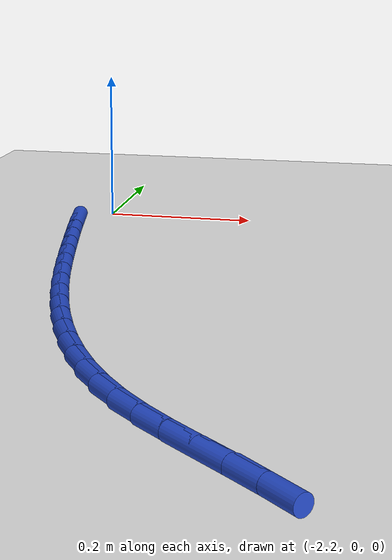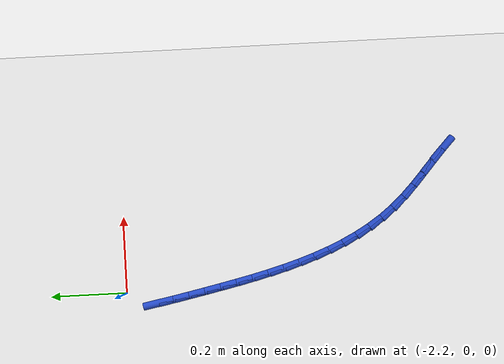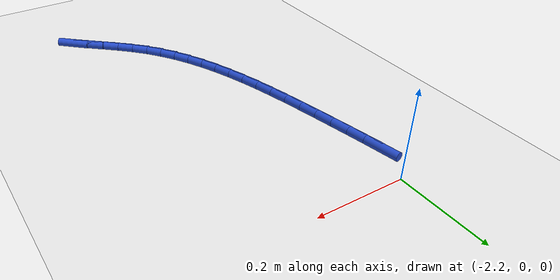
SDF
<sdf version="1.6">
 <world name="default">
  <model name="ground_plane">
   <static>1</static>
   <link name="link">
    <collision name="collision">
     <geometry><plane><normal>0 0 1</normal><size>100 100</size></plane></geometry>
     <surface><friction><ode><mu>100</mu><mu2>50</mu2></ode></friction></surface>
    </collision>
    <visual name="visual">
     <cast_shadows>0</cast_shadows>
     <geometry><plane><normal>0 0 1</normal><size>100 100</size></plane></geometry>
     <material>
      <script><uri>file://media/materials/scripts/gazebo.material</uri><name>Gazebo/WhiteGlow</name></script>
     </material>
    </visual>
   </link>
  </model>
  <model name="line">
   <link name="link_84">
    <pose>-2.229295239350285 -0.08204014083338215 0.01 0 1.57 -1.3827614105132373</pose>
    <collision name="collision">
     <geometry><cylinder><radius>0.01</radius><length>0.08</length></cylinder></geometry>
    </collision>
    <visual name="visual">
     <material>
      <script><name>Gazebo/Blue</name><uri>file://media/materials/scripts/gazebo.material</uri></script>
     </material>
     <geometry><cylinder><radius>0.01</radius><length>0.08</length></cylinder></geometry>
    </visual>
   </link>
   <link name="link_85">
    <pose>-2.2214026378339975 -0.12351840325663269 0.01 0 1.57 -1.3697180198021357</pose>
    <collision name="collision">
     <geometry><cylinder><radius>0.01</radius><length>0.08</length></cylinder></geometry>
    </collision>
    <visual name="visual">
     <material>
      <script><name>Gazebo/Blue</name><uri>file://media/materials/scripts/gazebo.material</uri></script>
     </material>
     <geometry><cylinder><radius>0.01</radius><length>0.08</length></cylinder></geometry>
    </visual>
   </link>
   <link name="link_86">
    <pose>-2.2129104340967385 -0.16518098001657916 0.01 0 1.57 -1.362791547350703</pose>
    <collision name="collision">
     <geometry><cylinder><radius>0.01</radius><length>0.08</length></cylinder></geometry>
    </collision>
    <visual name="visual">
     <material>
      <script><name>Gazebo/Blue</name><uri>file://media/materials/scripts/gazebo.material</uri></script>
     </material>
     <geometry><cylinder><radius>0.01</radius><length>0.08</length></cylinder></geometry>
    </visual>
   </link>
   <link name="link_87">
    <pose>-2.204078031563189 -0.20702931034897146 0.01 0 1.57 -1.3593970572802414</pose>
    <collision name="collision">
     <geometry><cylinder><radius>0.01</radius><length>0.08</length></cylinder></geometry>
    </collision>
    <visual name="visual">
     <material>
      <script><name>Gazebo/Blue</name><uri>file://media/materials/scripts/gazebo.material</uri></script>
     </material>
     <geometry><cylinder><radius>0.01</radius><length>0.08</length></cylinder></geometry>
    </visual>
   </link>
   <link name="link_88">
    <pose>-2.1950649795703523 -0.24902750129678816 0.01 0 1.57 -1.352438103525417</pose>
    <collision name="collision">
     <geometry><cylinder><radius>0.01</radius><length>0.08</length></cylinder></geometry>
    </collision>
    <visual name="visual">
     <material>
      <script><name>Gazebo/Blue</name><uri>file://media/materials/scripts/gazebo.material</uri></script>
     </material>
     <geometry><cylinder><radius>0.01</radius><length>0.08</length></cylinder></geometry>
    </visual>
   </link>
   <link name="link_89">
    <pose>-2.1857442287001434 -0.2910325099583105 0.01 0 1.57 -1.34062023675828</pose>
    <collision name="collision">
     <geometry><cylinder><radius>0.01</radius><length>0.08</length></cylinder></geometry>
    </collision>
    <visual name="visual">
     <material>
      <script><name>Gazebo/Blue</name><uri>file://media/materials/scripts/gazebo.material</uri></script>
     </material>
     <geometry><cylinder><radius>0.01</radius><length>0.08</length></cylinder></geometry>
    </visual>
   </link>
   <link name="link_90">
    <pose>-2.175937630459835 -0.33288218915126877 0.01 0 1.57 -1.3238347950795422</pose>
    <collision name="collision">
     <geometry><cylinder><radius>0.01</radius><length>0.08</length></cylinder></geometry>
    </collision>
    <visual name="visual">
     <material>
      <script><name>Gazebo/Blue</name><uri>file://media/materials/scripts/gazebo.material</uri></script>
     </material>
     <geometry><cylinder><radius>0.01</radius><length>0.08</length></cylinder></geometry>
    </visual>
   </link>
   <link name="link_91">
    <pose>-2.1654670363567003 -0.37441439169339596 0.01 0 1.57 -1.301903000319858</pose>
    <collision name="collision">
     <geometry><cylinder><radius>0.01</radius><length>0.08</length></cylinder></geometry>
    </collision>
    <visual name="visual">
     <material>
      <script><name>Gazebo/Blue</name><uri>file://media/materials/scripts/gazebo.material</uri></script>
     </material>
     <geometry><cylinder><radius>0.01</radius><length>0.08</length></cylinder></geometry>
    </visual>
   </link>
   <link name="link_92">
    <pose>-2.154154297898014 -0.4154669704024242 0.01 0 1.57 -1.2745836038035985</pose>
    <collision name="collision">
     <geometry><cylinder><radius>0.01</radius><length>0.08</length></cylinder></geometry>
    </collision>
    <visual name="visual">
     <material>
      <script><name>Gazebo/Blue</name><uri>file://media/materials/scripts/gazebo.material</uri></script>
     </material>
     <geometry><cylinder><radius>0.01</radius><length>0.08</length></cylinder></geometry>
    </visual>
   </link>
   <link name="link_93">
    <pose>-2.141821266591048 -0.4558777780960855 0.01 0 1.57 -1.2415845397040846</pose>
    <collision name="collision">
     <geometry><cylinder><radius>0.01</radius><length>0.08</length></cylinder></geometry>
    </collision>
    <visual name="visual">
     <material>
      <script><name>Gazebo/Blue</name><uri>file://media/materials/scripts/gazebo.material</uri></script>
     </material>
     <geometry><cylinder><radius>0.01</radius><length>0.08</length></cylinder></geometry>
    </visual>
   </link>
   <link name="link_94">
    <pose>-2.128289793943076 -0.49548466759211257 0.01 0 1.57 -1.2025812004911174</pose>
    <collision name="collision">
     <geometry><cylinder><radius>0.01</radius><length>0.08</length></cylinder></geometry>
    </collision>
    <visual name="visual">
     <material>
      <script><name>Gazebo/Blue</name><uri>file://media/materials/scripts/gazebo.material</uri></script>
     </material>
     <geometry><cylinder><radius>0.01</radius><length>0.08</length></cylinder></geometry>
    </visual>
   </link>
   <link name="link_95">
    <pose>-2.113381731461372 -0.5341254917082361 0.01 0 1.57 -1.1572445873788042</pose>
    <collision name="collision">
     <geometry><cylinder><radius>0.01</radius><length>0.08</length></cylinder></geometry>
    </collision>
    <visual name="visual">
     <material>
      <script><name>Gazebo/Blue</name><uri>file://media/materials/scripts/gazebo.material</uri></script>
     </material>
     <geometry><cylinder><radius>0.01</radius><length>0.08</length></cylinder></geometry>
    </visual>
   </link>
   <link name="link_96">
    <pose>-2.096918930653209 -0.5716381032621889 0.01 0 1.57 -1.1052828429918549</pose>
    <collision name="collision">
     <geometry><cylinder><radius>0.01</radius><length>0.08</length></cylinder></geometry>
    </collision>
    <visual name="visual">
     <material>
      <script><name>Gazebo/Blue</name><uri>file://media/materials/scripts/gazebo.material</uri></script>
     </material>
     <geometry><cylinder><radius>0.01</radius><length>0.08</length></cylinder></geometry>
    </visual>
   </link>
   <link name="link_97">
    <pose>-2.07872324302586 -0.6078603550717029 0.01 0 1.57 -1.046498920164651</pose>
    <collision name="collision">
     <geometry><cylinder><radius>0.01</radius><length>0.08</length></cylinder></geometry>
    </collision>
    <visual name="visual">
     <material>
      <script><name>Gazebo/Blue</name><uri>file://media/materials/scripts/gazebo.material</uri></script>
     </material>
     <geometry><cylinder><radius>0.01</radius><length>0.08</length></cylinder></geometry>
    </visual>
   </link>
   <link name="link_98">
    <pose>-2.0586165200865985 -0.6426300999545103 0.01 0 1.57 -0.9808644589491259</pose>
    <collision name="collision">
     <geometry><cylinder><radius>0.01</radius><length>0.08</length></cylinder></geometry>
    </collision>
    <visual name="visual">
     <material>
      <script><name>Gazebo/Blue</name><uri>file://media/materials/scripts/gazebo.material</uri></script>
     </material>
     <geometry><cylinder><radius>0.01</radius><length>0.08</length></cylinder></geometry>
    </visual>
   </link>
   <link name="link_99">
    <pose>-2.036420613342698 -0.6757851907283438 0.01 0 1.57 -0.9086044135593533</pose>
    <collision name="collision">
     <geometry><cylinder><radius>0.01</radius><length>0.08</length></cylinder></geometry>
    </collision>
    <visual name="visual">
     <material>
      <script><name>Gazebo/Blue</name><uri>file://media/materials/scripts/gazebo.material</uri></script>
     </material>
     <geometry><cylinder><radius>0.01</radius><length>0.08</length></cylinder></geometry>
    </visual>
   </link>
   <link name="link_100">
    <pose>-2.011957374301432 -0.7071634802109343 0.01 0 1.57 -0.8313930371673054</pose>
    <collision name="collision">
     <geometry><cylinder><radius>0.01</radius><length>0.08</length></cylinder></geometry>
    </collision>
    <visual name="visual">
     <material>
      <script><name>Gazebo/Blue</name><uri>file://media/materials/scripts/gazebo.material</uri></script>
     </material>
     <geometry><cylinder><radius>0.01</radius><length>0.08</length></cylinder></geometry>
    </visual>
   </link>
   <link name="link_101">
    <pose>-1.985080016644553 -0.7366343989008803 0.01 0 1.57 -0.7665566243657067</pose>
    <collision name="collision">
     <geometry><cylinder><radius>0.01</radius><length>0.08</length></cylinder></geometry>
    </collision>
    <visual name="visual">
     <material>
      <script><name>Gazebo/Blue</name><uri>file://media/materials/scripts/gazebo.material</uri></script>
     </material>
     <geometry><cylinder><radius>0.01</radius><length>0.08</length></cylinder></geometry>
    </visual>
   </link>
   <link name="link_102">
    <pose>-1.9561069335222863 -0.7645357532638392 0.01 0 1.57 -0.7268410360326981</pose>
    <collision name="collision">
     <geometry><cylinder><radius>0.01</radius><length>0.08</length></cylinder></geometry>
    </collision>
    <visual name="visual">
     <material>
      <script><name>Gazebo/Blue</name><uri>file://media/materials/scripts/gazebo.material</uri></script>
     </material>
     <geometry><cylinder><radius>0.01</radius><length>0.08</length></cylinder></geometry>
    </visual>
   </link>
   <link name="link_103">
    <pose>-1.9257125329957376 -0.7915638110464847 0.01 0 1.57 -0.7118637238680179</pose>
    <collision name="collision">
     <geometry><cylinder><radius>0.01</radius><length>0.08</length></cylinder></geometry>
    </collision>
    <visual name="visual">
     <material>
      <script><name>Gazebo/Blue</name><uri>file://media/materials/scripts/gazebo.material</uri></script>
     </material>
     <geometry><cylinder><radius>0.01</radius><length>0.08</length></cylinder></geometry>
    </visual>
   </link>
   <link name="link_104">
    <pose>-1.894580261658671 -0.8184239406367734 0.01 0 1.57 -0.7208099105480503</pose>
    <collision name="collision">
     <geometry><cylinder><radius>0.01</radius><length>0.08</length></cylinder></geometry>
    </collision>
    <visual name="visual">
     <material>
      <script><name>Gazebo/Blue</name><uri>file://media/materials/scripts/gazebo.material</uri></script>
     </material>
     <geometry><cylinder><radius>0.01</radius><length>0.08</length></cylinder></geometry>
    </visual>
   </link>
   <link name="link_105">
    <pose>-1.8633935661048515 -0.8458215104226605 0.01 0 1.57 -0.7530216782908087</pose>
    <collision name="collision">
     <geometry><cylinder><radius>0.01</radius><length>0.08</length></cylinder></geometry>
    </collision>
    <visual name="visual">
     <material>
      <script><name>Gazebo/Blue</name><uri>file://media/materials/scripts/gazebo.material</uri></script>
     </material>
     <geometry><cylinder><radius>0.01</radius><length>0.08</length></cylinder></geometry>
    </visual>
   </link>
  </model>
 </world>
</sdf>
